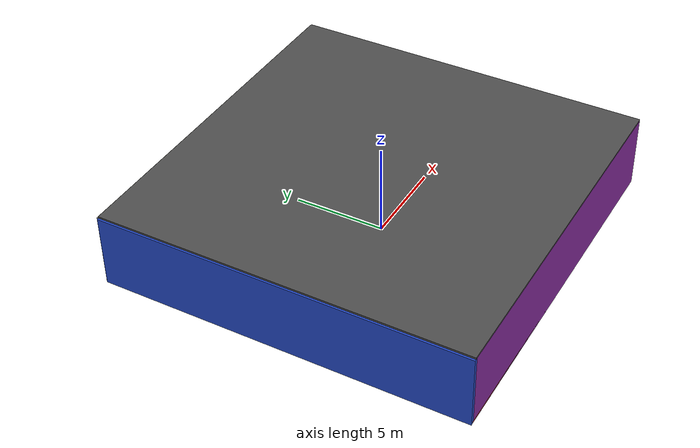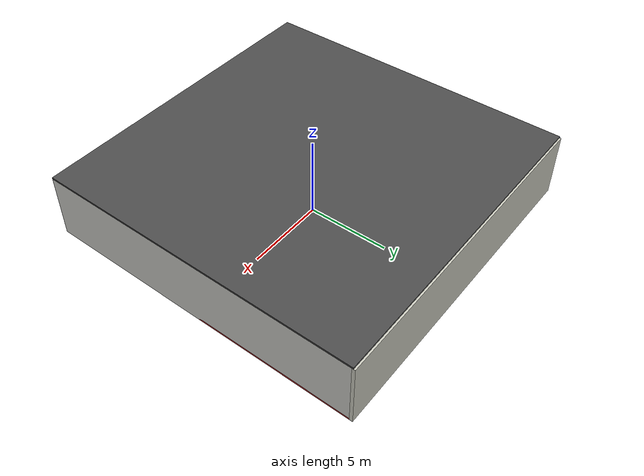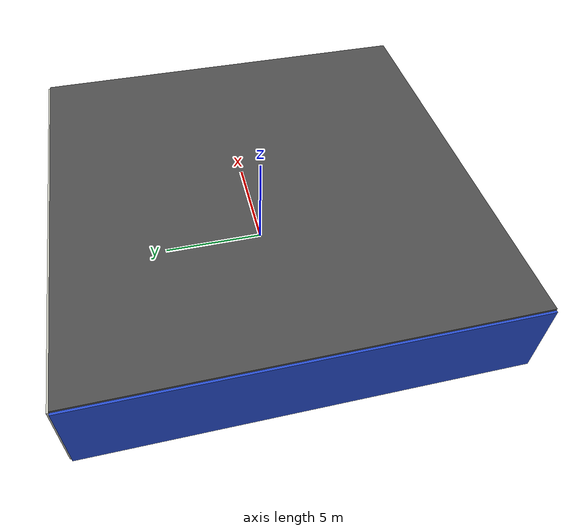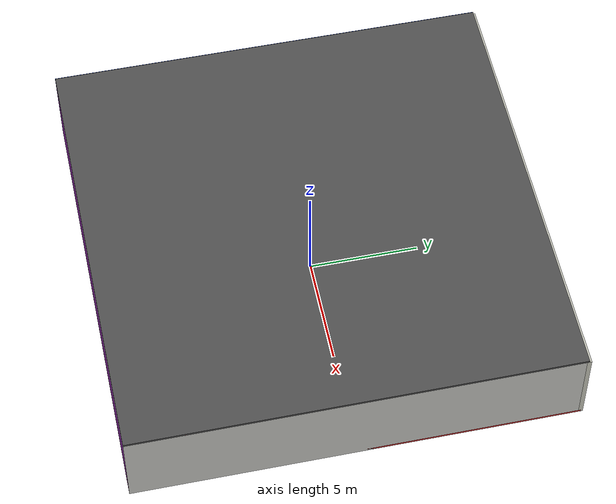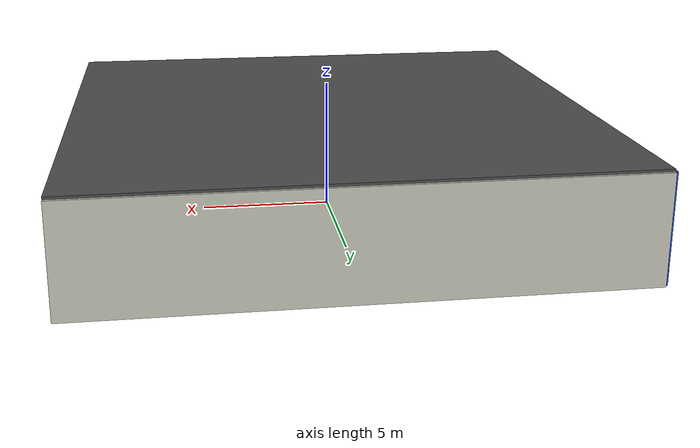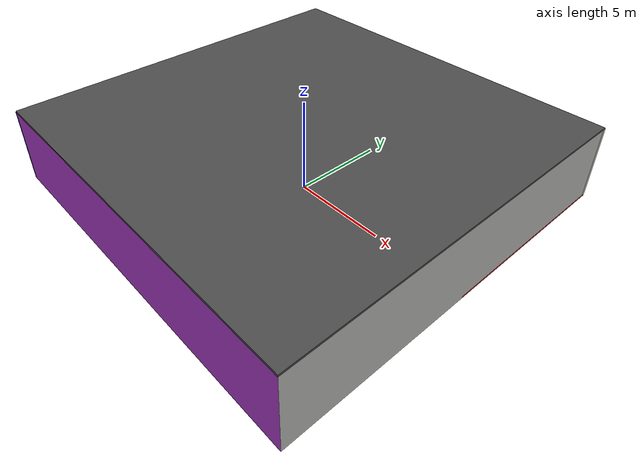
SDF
<sdf version="1.4">
 <world name="default">
  <physics type="ode">
   <max_step_size>0.001</max_step_size>
   <real_time_factor>1</real_time_factor>
   <real_time_update_rate>1000</real_time_update_rate>
   <gravity>0 0 -9.8</gravity>
  </physics>
  <scene><ambient>0.4 0.4 0.4 1</ambient><background>0.7 0.7 0.7 1</background><shadows>1</shadows></scene>
  <model name="Surrounding">
   <static>1</static>
   <link name="Ceiling">
    <collision name="Ceiling_Collision"><geometry><box><size>20 20 0.1</size></box></geometry></collision>
    <visual name="Ceiling_Visual">
     <geometry><box><size>20 20 0.1</size></box></geometry>
     <material>
      <script><uri>file://media/materials/scripts/gazebo.material</uri><name>Gazebo/Road</name></script>
     </material>
    </visual>
    <pose>0 0 4.05 0 0 0</pose>
   </link>
   <link name="Wall_South">
    <collision name="Wall_South_Collision">
     <geometry><box><size>20 0 4</size></box></geometry>
     <pose>0 0 2 0 -0 0</pose>
    </collision>
    <visual name="Wall_South_Visual">
     <pose>0 0 2 0 -0 0</pose>
     <geometry><box><size>20 0 4</size></box></geometry>
     <material>
      <script><uri>file://media/materials/scripts/gazebo.material</uri><name>Gazebo/PurpleGlow</name></script>
     </material>
    </visual>
    <velocity_decay><linear>0</linear><angular>0</angular></velocity_decay>
    <pose>0 -10 0 0 -0 0</pose>
   </link>
   <link name="Wall_East">
    <collision name="Wall_21_Collision">
     <geometry><box><size>20 0 4</size></box></geometry>
     <pose>0 0 2 0 -0 0</pose>
    </collision>
    <visual name="Wall_21_Visual">
     <pose>0 0 2 0 -0 0</pose>
     <geometry><box><size>20 0 4</size></box></geometry>
     <material>
      <script><uri>file://media/materials/scripts/gazebo.material</uri><name>Gazebo/CeilingTiled</name></script>
     </material>
    </visual>
    <velocity_decay><linear>0</linear><angular>0</angular></velocity_decay>
    <pose>10 0 0 0 -0 1.5708</pose>
   </link>
   <link name="Wall_North">
    <collision name="Wall_22_Collision">
     <geometry><box><size>20 0.2 4</size></box></geometry>
     <pose>0 0 2 0 -0 0</pose>
    </collision>
    <visual name="Wall_22_Visual">
     <pose>0 0 2 0 -0 0</pose>
     <geometry><box><size>20 0.2 4</size></box></geometry>
     <material>
      <script><uri>file://media/materials/scripts/gazebo.material</uri><name>Gazebo/PaintedWall</name></script>
     </material>
    </visual>
    <velocity_decay><linear>0</linear><angular>0</angular></velocity_decay>
    <pose>0 10 0 0 -0 0</pose>
   </link>
   <link name="Wall_West">
    <collision name="Wall_23_Collision">
     <geometry><box><size>20 0.2 4</size></box></geometry>
     <pose>0 0 2 0 -0 0</pose>
    </collision>
    <visual name="Wall_23_Visual">
     <pose>0 0 2 0 -0 0</pose>
     <geometry><box><size>20 0.2 4</size></box></geometry>
     <material>
      <script><uri>file://media/materials/scripts/gazebo.material</uri><name>Gazebo/BlueGlow</name></script>
     </material>
    </visual>
    <velocity_decay><linear>0</linear><angular>0</angular></velocity_decay>
    <pose>-10 0 0 0 0 -1.5708</pose>
   </link>
   <link name="Ground_link">
    <collision name="collision">
     <pose>0 0 .05 0 -0 0</pose>
     <geometry><box><size>20 20 0.1</size></box></geometry>
    </collision>
    <visual name="visual">
     <pose>0 0 .05 0 -0 0</pose>
     <geometry><box><size>20 20 0.1</size></box></geometry>
     <material>
      <script><uri>file://media/materials/scripts/gazebo.material</uri><name>Gazebo/Red</name></script>
     </material>
    </visual>
   </link>
   <static>1</static>
  </model>
  <spherical_coordinates>
   <surface_model>EARTH_WGS84</surface_model>
   <latitude_deg>0</latitude_deg>
   <longitude_deg>0</longitude_deg>
   <elevation>0</elevation>
   <heading_deg>0</heading_deg>
  </spherical_coordinates>
  <light name="lightball_0" type="diffuse">
   <diffuse>0.8 0.8 0.8 1</diffuse>
   <specular>0.2 0.2 0.2 1</specular>
   <attenuation>
    <range>100</range>
    <constant>0.7</constant>
    <linear>0.01</linear>
    <quadratic>0.001</quadratic>
   </attenuation>
   <direction>-0.5 0.1 -0.9</direction>
   <pose>-7.94814700495 7.71314575642 1.43702700951 0 0 0</pose>
  </light>
  <light name="lightball_1" type="diffuse">
   <diffuse>0.8 0.8 0.8 1</diffuse>
   <specular>0.2 0.2 0.2 1</specular>
   <attenuation>
    <range>100</range>
    <constant>0.7</constant>
    <linear>0.01</linear>
    <quadratic>0.001</quadratic>
   </attenuation>
   <direction>-0.5 0.1 -0.9</direction>
   <pose>-9.10970670982 -9.41709930825 2.13044743987 0 0 0</pose>
  </light>
  <light name="lightball_2" type="diffuse">
   <diffuse>0.8 0.8 0.8 1</diffuse>
   <specular>0.2 0.2 0.2 1</specular>
   <attenuation>
    <range>100</range>
    <constant>0.7</constant>
    <linear>0.01</linear>
    <quadratic>0.001</quadratic>
   </attenuation>
   <direction>-0.5 0.1 -0.9</direction>
   <pose>-7.83041375398 -4.73012100222 3.85689707574 0 0 0</pose>
  </light>
  <light name="lightball_3" type="diffuse">
   <diffuse>0.8 0.8 0.8 1</diffuse>
   <specular>0.2 0.2 0.2 1</specular>
   <attenuation>
    <range>100</range>
    <constant>0.7</constant>
    <linear>0.01</linear>
    <quadratic>0.001</quadratic>
   </attenuation>
   <direction>-0.5 0.1 -0.9</direction>
   <pose>5.13487033604 -3.73252974761 3.6928966742 0 0 0</pose>
  </light>
  <light name="lightball_4" type="diffuse">
   <diffuse>0.8 0.8 0.8 1</diffuse>
   <specular>0.2 0.2 0.2 1</specular>
   <attenuation>
    <range>100</range>
    <constant>0.7</constant>
    <linear>0.01</linear>
    <quadratic>0.001</quadratic>
   </attenuation>
   <direction>-0.5 0.1 -0.9</direction>
   <pose>-8.78776240418 2.34291442567 2.80254535695 0 0 0</pose>
  </light>
  <light name="lightball_5" type="diffuse">
   <diffuse>0.8 0.8 0.8 1</diffuse>
   <specular>0.2 0.2 0.2 1</specular>
   <attenuation>
    <range>100</range>
    <constant>0.7</constant>
    <linear>0.01</linear>
    <quadratic>0.001</quadratic>
   </attenuation>
   <direction>-0.5 0.1 -0.9</direction>
   <pose>-2.44642706781 -2.24118396425 1.97840237322 0 0 0</pose>
  </light>
  <light name="lightball_6" type="diffuse">
   <diffuse>0.8 0.8 0.8 1</diffuse>
   <specular>0.2 0.2 0.2 1</specular>
   <attenuation>
    <range>100</range>
    <constant>0.7</constant>
    <linear>0.01</linear>
    <quadratic>0.001</quadratic>
   </attenuation>
   <direction>-0.5 0.1 -0.9</direction>
   <pose>1.806702624 -0.185869954964 1.27295316947 0 0 0</pose>
  </light>
  <light name="lightball_7" type="diffuse">
   <diffuse>0.8 0.8 0.8 1</diffuse>
   <specular>0.2 0.2 0.2 1</specular>
   <attenuation>
    <range>100</range>
    <constant>0.7</constant>
    <linear>0.01</linear>
    <quadratic>0.001</quadratic>
   </attenuation>
   <direction>-0.5 0.1 -0.9</direction>
   <pose>-5.71311145482 2.2743027399 2.42383215634 0 0 0</pose>
  </light>
  <light name="lightball_8" type="diffuse">
   <diffuse>0.8 0.8 0.8 1</diffuse>
   <specular>0.2 0.2 0.2 1</specular>
   <attenuation>
    <range>100</range>
    <constant>0.7</constant>
    <linear>0.01</linear>
    <quadratic>0.001</quadratic>
   </attenuation>
   <direction>-0.5 0.1 -0.9</direction>
   <pose>-7.41388910205 -2.97130337318 3.39333873748 0 0 0</pose>
  </light>
  <include>
   <uri>model://construction_cone</uri>
   <pose>-6.85734242421 -7.12885081414 0 0 0 0.645429897683</pose>
  </include>
  <include>
   <uri>model://robocup_3Dsim_goal</uri>
   <pose>-8.07279291915 1.63559480327 0 0 0 2.74991162976</pose>
  </include>
  <include><uri>model://cabinet</uri><pose>-7.54359284198 5.20603891148 0 0 0 1.29861303937</pose></include>
  <include><uri>model://table</uri><pose>1.38989919502 -4.66577670364 0 0 0 2.50669132825</pose></include>
  <include>
   <uri>model://textured_shapes</uri>
   <pose>1.25928513058 4.12863234352 0 0 0 2.85235651567</pose>
  </include>
  <include>
   <uri>model://construction_cone</uri>
   <pose>7.29371399206 -6.7824023601 0 0 0 1.48929716519</pose>
  </include>
 </world>
</sdf>

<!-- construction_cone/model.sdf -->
<sdf version="1.5">
  <model name="Construction Cone">
    <link name="link">
      <collision name="collision">
        <geometry>
          <mesh>
            <scale>10 10 10</scale>
            <uri>file://isr-testbed/construction_cone/meshes/construction_cone.dae</uri>
          </mesh>
        </geometry>
      </collision>
      <visual name="visual">
        <geometry>
          <mesh>
            <scale>10 10 10</scale>
            <uri>file://isr-testbed/construction_cone/meshes/construction_cone.dae</uri>
          </mesh>
        </geometry>
      </visual>
    </link>
  </model>
</sdf>

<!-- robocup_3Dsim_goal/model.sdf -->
<sdf version="1.5">
  <model name="robocup_3d_goal">
    <static>true</static>
    <link name="left_post">
      <pose>0 1.05 0.45 0 0 0</pose>
      <collision name="collision">
        <geometry>
          <cylinder>
            <radius>0.05</radius>
            <length>0.9</length>
          </cylinder>
        </geometry>
      </collision>
      <visual name="visual">
        <geometry>
          <cylinder>
            <radius>0.05</radius>
            <length>0.9</length>
          </cylinder>
        </geometry>
        <material>
          <script>
            <uri>file://media/materials/scripts/gazebo.material</uri>
            <name>Gazebo/ZincYellow</name>
          </script>
        </material>
      </visual>
    </link>
    <link name="left_support_horiz_lower">
      <pose>0.30 1.05 0.01 0 0 0</pose>
      <collision name="collision">
        <geometry>
          <box>
            <size>0.50 0.02 0.02</size>
          </box>
        </geometry>
      </collision>
      <visual name="visual">
        <geometry>
          <box>
            <size>0.50 0.02 0.02</size>
          </box>
        </geometry>
        <material>
          <script>
            <uri>file://media/materials/scripts/gazebo.material</uri>
            <name>Gazebo/White</name>
          </script>
        </material>
      </visual>
    </link>
    <link name="left_support_horiz_upper">
      <pose>0.30 1.05 0.79 0 0 0</pose>
      <collision name="collision">
        <geometry>
          <box>
            <size>0.50 0.02 0.02</size>
          </box>
        </geometry>
      </collision>
      <visual name="visual">
        <geometry>
          <box>
            <size>0.50 0.02 0.02</size>
          </box>
        </geometry>
        <material>
          <script>
            <uri>file://media/materials/scripts/gazebo.material</uri>
            <name>Gazebo/White</name>
          </script>
        </material>
      </visual>
    </link>
    <link name="left_support_vertical">
      <pose>0.56 1.05 0.4 0 1.5708 0</pose>
      <collision name="collision">
        <geometry>
          <box>
            <size>0.80 0.02 0.02</size>
          </box>
        </geometry>
      </collision>
      <visual name="visual">
        <geometry>
          <box>
            <size>0.80 0.02 0.02</size>
          </box>
        </geometry>
        <material>
          <script>
            <uri>file://media/materials/scripts/gazebo.material</uri>
            <name>Gazebo/White</name>
          </script>
        </material>
      </visual>
    </link>
    <link name="right_support_horiz_lower">
      <pose>0.30 -1.05 0.01 0 0 0</pose>
      <collision name="collision">
        <geometry>
          <box>
            <size>0.50 0.02 0.02</size>
          </box>
        </geometry>
      </collision>
      <visual name="visual">
        <geometry>
          <box>
            <size>0.50 0.02 0.02</size>
          </box>
        </geometry>
        <material>
          <script>
            <uri>file://media/materials/scripts/gazebo.material</uri>
            <name>Gazebo/White</name>
          </script>
        </material>
      </visual>
    </link>
    <link name="right_support_horiz_upper">
      <pose>0.30 -1.05 0.79 0 0 0</pose>
      <collision name="collision">
        <geometry>
          <box>
            <size>0.50 0.02 0.02</size>
          </box>
        </geometry>
      </collision>
      <visual name="visual">
        <geometry>
          <box>
            <size>0.50 0.02 0.02</size>
          </box>
        </geometry>
        <material>
          <script>
            <uri>file://media/materials/scripts/gazebo.material</uri>
            <name>Gazebo/White</name>
          </script>
        </material>
      </visual>
    </link>
    <link name="right_support_vertical">
      <pose>0.56 -1.05 0.4 0 1.5708 0</pose>
      <collision name="collision">
        <geometry>
          <box>
            <size>0.80 0.02 0.02</size>
          </box>
        </geometry>
      </collision>
      <visual name="visual">
        <geometry>
          <box>
            <size>0.80 0.02 0.02</size>
          </box>
        </geometry>
        <material>
          <script>
            <uri>file://media/materials/scripts/gazebo.material</uri>
            <name>Gazebo/White</name>
          </script>
        </material>
      </visual>
    </link>
    <link name="center_support_horiz_lower">
      <pose>0.56 0 0.01 0 1.5708 0</pose>
      <collision name="collision">
        <geometry>
          <box>
            <size>0.02 2.08 0.02</size>
          </box>
        </geometry>
      </collision>
      <visual name="visual">
        <geometry>
          <box>
            <size>0.02 2.08 0.02</size>
          </box>
        </geometry>
        <material>
          <script>
            <uri>file://media/materials/scripts/gazebo.material</uri>
            <name>Gazebo/White</name>
          </script>
        </material>
      </visual>
    </link>
    <link name="center_support_horiz_upper">
      <pose>0.56 0 0.79 0 1.5708 0</pose>
      <collision name="collision">
        <geometry>
          <box>
            <size>0.02 2.08 0.02</size>
          </box>
        </geometry>
      </collision>
      <visual name="visual">
        <geometry>
          <box>
            <size>0.02 2.08 0.02</size>
          </box>
        </geometry>
        <material>
          <script>
            <uri>file://media/materials/scripts/gazebo.material</uri>
            <name>Gazebo/White</name>
          </script>
        </material>
      </visual>
    </link>
    <link name="right_post">
      <pose>0 -1.05 0.45 0 0 0</pose>
      <collision name="collision">
        <geometry>
          <cylinder>
            <radius>0.05</radius>
            <length>0.9</length>
          </cylinder>
        </geometry>
      </collision>
      <visual name="visual">
        <geometry>
          <cylinder>
            <radius>0.05</radius>
            <length>0.9</length>
          </cylinder>
        </geometry>
        <material>
          <script>
            <uri>file://media/materials/scripts/gazebo.material</uri>
            <name>Gazebo/ZincYellow</name>
          </script>
        </material>
      </visual>
    </link>
    <link name="crossbar">
      <pose>0 0 0.85 1.57 1.57 0</pose>
      <collision name="collision">
        <geometry>
          <cylinder>
            <radius>0.05</radius>
            <length>2.0</length>
          </cylinder>
        </geometry>
      </collision>
      <visual name="visual">
        <geometry>
          <cylinder>
            <radius>0.05</radius>
            <length>2.0</length>
          </cylinder>
        </geometry>
        <material>
          <script>
            <uri>file://media/materials/scripts/gazebo.material</uri>
            <name>Gazebo/ZincYellow</name>
          </script>
        </material>
      </visual>
    </link>
    <link name="center_net">
      <pose>0.56 0 0.40 0 0 0</pose>
      <collision name="collision">
        <geometry>
          <box>
            <size>0.01 2.1 0.80</size>
          </box>
        </geometry>
      </collision>
      <visual name="visual">
        <geometry>
          <box>
            <size>0.01 2.1 0.80</size>
          </box>
        </geometry>
        <material>
          <script>
            <uri>model://../model_source/models/robocup09_spl_field/materials/scripts/</uri>
            <uri>model://../model_source/models/robocup09_spl_field/materials/textures/</uri>
            <name>RoboCup/Net</name>
          </script>
        </material>
      </visual>
    </link>
    <link name="left_net">
      <pose>0.30 1.05 0.40 0 0 0</pose>
      <collision name="collision">
        <geometry>
          <box>
            <size>0.50 0.01 0.76</size>
          </box>
        </geometry>
      </collision>
      <visual name="visual">
        <geometry>
          <box>
            <size>0.50 0.01 0.76</size>
          </box>
        </geometry>
        <material>
          <script>
            <uri>model://../model_source/models/robocup09_spl_field/materials/scripts/</uri>
            <uri>model://../model_source/models/robocup09_spl_field/materials/textures/</uri>
            <name>RoboCup/Net</name>
          </script>
        </material>
      </visual>
    </link>
    <link name="right_net">
      <pose>0.30 -1.05 0.40 0 0 0</pose>
      <collision name="collision">
        <geometry>
          <box>
            <size>0.50 0.01 0.76</size>
          </box>
        </geometry>
      </collision>
      <visual name="visual">
        <geometry>
          <box>
            <size>0.50 0.01 0.76</size>
          </box>
        </geometry>
        <material>
          <script>
            <uri>model://../model_source/models/robocup09_spl_field/materials/scripts/</uri>
            <uri>model://../model_source/models/robocup09_spl_field/materials/textures/</uri>
            <name>RoboCup/Net</name>
          </script>
        </material>
      </visual>
    </link>
  </model>
</sdf>

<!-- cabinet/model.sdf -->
<sdf version="1.5">
  <model name="cabinet">
    <static>true</static>
    <link name="cabinet_bottom_plate">
      <inertial>
        <pose>0 0 -1 0 0 0</pose>
        <inertia>
          <ixx>2.050000</ixx>
          <ixy>0</ixy>
          <ixz>0</ixz>
          <iyy>2.050000</iyy>
          <iyz>0</iyz>
          <izz>2.050000</izz>
        </inertia>
        <mass>25.000000</mass>
      </inertial>
      <collision name="cabinet_bottom_plate_geom">
        <pose>0 0 0.010000 0 0 0</pose>
        <geometry>
          <box>
            <size>0.450000 0.450000 0.020000</size>
          </box>
        </geometry>
      </collision>
      <visual name="cabinet_bottom_plate_geom_visual">
        <pose>0 0 0.010000 0 0 0</pose>
        <geometry>
          <box>
            <size>0.450000 0.450000 0.020000</size>
          </box>
        </geometry>
        <material>
          <script>
            <uri>model://media/materials/scripts/gazebo.material</uri>
            <name>Gazebo/Wood</name>
          </script>
        </material>
      </visual>
      <collision name="cabinet_bottom_plate_geom_cabinet_back_plate">
        <pose>0.235000 0 0.510000 0 0 0</pose>
        <geometry>
          <box>
            <size>0.020000 0.450000 1.020000</size>
          </box>
        </geometry>
      </collision>
      <visual name="cabinet_bottom_plate_geom_cabinet_back_plate_visual">
        <pose>0.235000 0 0.510000 0 0 0</pose>
        <geometry>
          <box>
            <size>0.020000 0.450000 1.020000</size>
          </box>
        </geometry>
        <material>
          <script>
            <uri>model://media/materials/scripts/gazebo.material</uri>
            <name>Gazebo/Wood</name>
          </script>
        </material>
      </visual>
      <collision name="cabinet_bottom_plate_geom_cabinet_left_plate">
        <pose>0 0.235000 0.510000 0 0 0</pose>
        <geometry>
          <box>
            <size>0.450000 0.020000 1.020000</size>
          </box>
        </geometry>
      </collision>
      <visual name="cabinet_bottom_plate_geom_cabinet_left_plate_visual">
        <pose>0 0.235000 0.510000 0 0 0</pose>
        <geometry>
          <box>
            <size>0.450000 0.020000 1.020000</size>
          </box>
        </geometry>
        <material>
          <script>
            <uri>model://media/materials/scripts/gazebo.material</uri>
            <name>Gazebo/Wood</name>
          </script>
        </material>
      </visual>
      <collision name="cabinet_bottom_plate_geom_cabinet_middle_plate">
        <pose>0 0 0.510000 0 0 0</pose>
        <geometry>
          <box>
            <size>0.450000 0.450000 0.020000</size>
          </box>
        </geometry>
      </collision>
      <visual name="cabinet_bottom_plate_geom_cabinet_middle_plate_visual">
        <pose>0 0 0.510000 0 0 0</pose>
        <geometry>
          <box>
            <size>0.450000 0.450000 0.020000</size>
          </box>
        </geometry>
        <material>
          <script>
            <uri>model://media/materials/scripts/gazebo.material</uri>
            <name>Gazebo/Wood</name>
          </script>
        </material>
      </visual>
      <collision name="cabinet_bottom_plate_geom_cabinet_right_plate">
        <pose>0 -0.235000 0.510000 0 0 0</pose>
        <geometry>
          <box>
            <size>0.450000 0.020000 1.020000</size>
          </box>
        </geometry>
      </collision>
      <visual name="cabinet_bottom_plate_geom_cabinet_right_plate_visual">
        <pose>0 -0.235000 0.510000 0 0 0</pose>
        <geometry>
          <box>
            <size>0.450000 0.020000 1.020000</size>
          </box>
        </geometry>
        <material>
          <script>
            <uri>model://media/materials/scripts/gazebo.material</uri>
            <name>Gazebo/Wood</name>
          </script>
        </material>
      </visual>
      <collision name="cabinet_bottom_plate_geom_cabinet_top_plate">
        <pose>0 0 1.010000 0 0 0</pose>
        <geometry>
          <box>
            <size>0.450000 0.450000 0.020000</size>
          </box>
        </geometry>
      </collision>
      <visual name="cabinet_bottom_plate_geom_cabinet_top_plate_visual">
        <pose>0 0 1.010000 0 0 0</pose>
        <geometry>
          <box>
            <size>0.450000 0.450000 0.020000</size>
          </box>
        </geometry>
        <material>
          <script>
            <uri>model://media/materials/scripts/gazebo.material</uri>
            <name>Gazebo/Wood</name>
          </script>
        </material>
      </visual>
    </link>
  </model>
</sdf>

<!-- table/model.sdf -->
<sdf version="1.5">
  <model name="table">
    <static>true</static>
    <link name="link">
      <collision name="surface">
        <pose>0 0 1.0 0 0 0</pose>
        <geometry>
          <box>
            <size>1.5 0.8 0.03</size>
          </box>
        </geometry>
        <surface>
          <friction>
            <ode>
              <mu>0.6</mu>
              <mu2>0.6</mu2>
            </ode>
          </friction>
        </surface>
      </collision>
      <visual name="visual1">
        <pose>0 0 1.0 0 0 0</pose>
        <geometry>
          <box>
            <size>1.5 0.8 0.03</size>
          </box>
        </geometry>
        <material>
          <script>
            <uri>model://media/materials/scripts/gazebo.material</uri>
            <name>Gazebo/Wood</name>
          </script>
        </material>
      </visual>
      <collision name="front_left_leg">
        <pose>0.68 0.38 0.5 0 0 0</pose>
        <geometry>
          <cylinder>
            <radius>0.02</radius>
            <length>1.0</length>
          </cylinder>
        </geometry>
      </collision>
      <visual name="front_left_leg">
        <pose>0.68 0.38 0.5 0 0 0</pose>
        <geometry>
          <cylinder>
            <radius>0.02</radius>
            <length>1.0</length>
          </cylinder>
        </geometry>
        <material>
          <script>
            <uri>model://media/materials/scripts/gazebo.material</uri>
            <name>Gazebo/Grey</name>
          </script>
        </material>
      </visual>
      <collision name="front_right_leg">
        <pose>0.68 -0.38 0.5 0 0 0</pose>
        <geometry>
          <cylinder>
            <radius>0.02</radius>
            <length>1.0</length>
          </cylinder>
        </geometry>
      </collision>
      <visual name="front_right_leg">
        <pose>0.68 -0.38 0.5 0 0 0</pose>
        <geometry>
          <cylinder>
            <radius>0.02</radius>
            <length>1.0</length>
          </cylinder>
        </geometry>
        <material>
          <script>
            <uri>model://media/materials/scripts/gazebo.material</uri>
            <name>Gazebo/Grey</name>
          </script>
        </material>
      </visual>
      <collision name="back_right_leg">
        <pose>-0.68 -0.38 0.5 0 0 0</pose>
        <geometry>
          <cylinder>
            <radius>0.02</radius>
            <length>1.0</length>
          </cylinder>
        </geometry>
      </collision>
      <visual name="back_right_leg">
        <pose>-0.68 -0.38 0.5 0 0 0</pose>
        <geometry>
          <cylinder>
            <radius>0.02</radius>
            <length>1.0</length>
          </cylinder>
        </geometry>
        <material>
          <script>
            <uri>model://media/materials/scripts/gazebo.material</uri>
            <name>Gazebo/Grey</name>
          </script>
        </material>
      </visual>
      <collision name="back_left_leg">
        <pose>-0.68 0.38 0.5 0 0 0</pose>
        <geometry>
          <cylinder>
            <radius>0.02</radius>
            <length>1.0</length>
          </cylinder>
        </geometry>
      </collision>
      <visual name="back_left_leg">
        <pose>-0.68 0.38 0.5 0 0 0</pose>
        <geometry>
          <cylinder>
            <radius>0.02</radius>
            <length>1.0</length>
          </cylinder>
        </geometry>
        <material>
          <script>
            <uri>model://media/materials/scripts/gazebo.material</uri>
            <name>Gazebo/Grey</name>
          </script>
        </material>
      </visual>
    </link>
  </model>
</sdf>

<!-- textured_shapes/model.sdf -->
<sdf version="1.6">
  <model name="textured_shapes">
    <pose>0 0 0.5 0 0 0</pose>
    <link name="box">
      <pose>0 -1.5 0 0 0 0</pose>
      <collision name="collision">
        <geometry>
          <box>
            <size>1 1 1</size>
          </box>
        </geometry>
      </collision>
      <visual name="visual">
        <geometry>
          <box>
            <size>1 1 1</size>
          </box>
        </geometry>
        <material>
          <script>
            <uri>model://../model_source/models/textured_shapes/materials/scripts</uri>
            <uri>model://../model_source/models/textured_shapes/materials/textures</uri>
            <name>TexturedShape/Squares</name>
          </script>
        </material>
      </visual>
    </link>
    <link name="sphere">
      <collision name="collision">
        <geometry>
          <sphere>
            <radius>0.5</radius>
          </sphere>
        </geometry>
      </collision>
      <visual name="visual">
        <geometry>
          <sphere>
            <radius>0.5</radius>
          </sphere>
        </geometry>
        <material>
          <script>
            <uri>model://../model_source/models/textured_shapes/materials/scripts</uri>
            <uri>model://../model_source/models/textured_shapes/materials/textures</uri>
            <name>TexturedShape/Squares</name>
          </script>
        </material>
      </visual>
    </link>
    <link name="cylinder">
      <pose>0 1.5 0 0 0 0</pose>
      <collision name="collision">
        <geometry>
          <cylinder>
            <radius>0.5</radius>
            <length>1</length>
          </cylinder>
        </geometry>
      </collision>
      <visual name="visual">
        <geometry>
          <cylinder>
            <radius>0.5</radius>
            <length>1</length>
          </cylinder>
        </geometry>
        <material>
          <script>
            <uri>model://../model_source/models/textured_shapes/materials/scripts</uri>
            <uri>model://../model_source/models/textured_shapes/materials/textures</uri>
            <name>TexturedShape/Squares</name>
          </script>
        </material>
      </visual>
    </link>
  </model>
</sdf>
